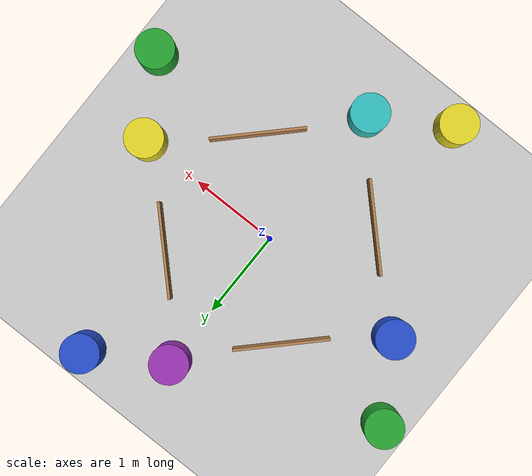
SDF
<sdf version="1.6">
 <world name="default">
  <light name="sun" type="directional">
   <pose>0 0 10 0 -0 0</pose>
   <diffuse>0.8 0.8 0.8 1</diffuse>
   <specular>0.2 0.2 0.2 1</specular>
   <attenuation>
    <range>1000</range>
    <constant>0.9</constant>
    <linear>0.01</linear>
    <quadratic>0.001</quadratic>
   </attenuation>
   <direction>-0.5 0.1 -0.9</direction>
  </light>
  <gravity>0 0 -9.8</gravity>
  <magnetic_field>6e-06 2.3e-05 -4.2e-05</magnetic_field>
  <atmosphere type="adiabatic"/>
  <physics name="default_physics" default="0" type="ode">
   <max_step_size>0.001</max_step_size>
   <real_time_factor>1</real_time_factor>
   <real_time_update_rate>1000</real_time_update_rate>
  </physics>
  <scene><ambient>0.4 0.4 0.4 1</ambient><background>0.7 0.7 0.7 1</background><shadows>1</shadows></scene>
  <spherical_coordinates>
   <surface_model>EARTH_WGS84</surface_model>
   <latitude_deg>0</latitude_deg>
   <longitude_deg>0</longitude_deg>
   <elevation>0</elevation>
   <heading_deg>0</heading_deg>
  </spherical_coordinates>
  <include><uri>model://task1</uri></include>
 </world>
</sdf>

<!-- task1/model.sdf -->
<sdf version="1.4">
<model name="task1">
  <static>true</static>
    <link name="floor">
      <collision name="collision">
        <geometry>
          <plane>
            <normal>0 0 1</normal>
            <size>5.0 5.0</size>
          </plane>
        </geometry>
        <surface>
          <friction>
            <ode>
              <mu>100</mu>
              <mu2>50</mu2>
            </ode>
          </friction>
        </surface>
      </collision>
      <visual name="visual">
        <cast_shadows>false</cast_shadows>
        <geometry>
          <plane>
            <normal>0 0 1</normal>
            <size>5.0 5.0</size>
          </plane>
        </geometry>
        <material>
          <script>
            <uri>model://task1/materials/scripts</uri>
            <uri>model://task1/materials/textures</uri>
            <name>task1Floor/Image</name>
          </script>
        </material>
      </visual>
    </link>
    <link name='BLU1'>
      <pose frame=''>-1.68708 0 0.2 0 0 0</pose>
      <collision name='coll'>
        <geometry>
          <cylinder>
            <radius>0.215</radius>
            <length>0.4</length>
          </cylinder>
        </geometry>
        <max_contacts>10</max_contacts>
        <surface>
          <bounce/>
          <friction>
            <ode/>
          </friction>
          <contact>
            <ode/>
          </contact>
        </surface>
      </collision>
      <visual name='vis'>
        <geometry>
          <cylinder>
            <radius>0.215</radius>
            <length>0.4</length>
          </cylinder>
        </geometry>
        <material>
          <script>
            <uri>file://media/materials/scripts/gazebo.material</uri>
            <name>Gazebo/Blue</name>
          </script>
        </material>
      </visual>
    </link>
    <link name='YEL1'>
      <pose frame=''>1.68708 0 0.2 0 0 0</pose>
      <collision name='coll'>
        <geometry>
          <cylinder>
            <radius>0.215</radius>
            <length>0.4</length>
          </cylinder>
        </geometry>
        <max_contacts>10</max_contacts>
        <surface>
          <bounce/>
          <friction>
            <ode/>
          </friction>
          <contact>
            <ode/>
          </contact>
        </surface>
      </collision>
      <visual name='vis'>
        <geometry>
          <cylinder>
            <radius>0.215</radius>
            <length>0.4</length>
          </cylinder>
        </geometry>
        <material>
          <script>
            <uri>file://media/materials/scripts/gazebo.material</uri>
            <name>Gazebo/Yellow</name>
          </script>
        </material>
      </visual>
    </link>
    <link name='GRN1'>
      <pose frame=''>-2.17971 0.8 0.2 0 0 0</pose>
      <collision name='coll'>
        <geometry>
          <cylinder>
            <radius>0.215</radius>
            <length>0.4</length>
          </cylinder>
        </geometry>
        <max_contacts>10</max_contacts>
        <surface>
          <bounce/>
          <friction>
            <ode/>
          </friction>
          <contact>
            <ode/>
          </contact>
        </surface>
      </collision>
      <visual name='vis'>
        <geometry>
          <cylinder>
            <radius>0.215</radius>
            <length>0.4</length>
          </cylinder>
        </geometry>
        <material>
          <script>
            <uri>file://media/materials/scripts/gazebo.material</uri>
            <name>Gazebo/Green</name>
          </script>
        </material>
      </visual>
    </link>
    <link name='PRP1'>
      <pose frame=''>0 1.68708 0.2 0 0 0</pose>
      <collision name='coll'>
        <geometry>
          <cylinder>
            <radius>0.215</radius>
            <length>0.4</length>
          </cylinder>
        </geometry>
        <max_contacts>10</max_contacts>
        <surface>
          <bounce/>
          <friction>
            <ode/>
          </friction>
          <contact>
            <ode/>
          </contact>
        </surface>
      </collision>
      <visual name='vis'>
        <geometry>
          <cylinder>
            <radius>0.215</radius>
            <length>0.4</length>
          </cylinder>
        </geometry>
        <material>
          <script>
            <uri>file://media/materials/scripts/gazebo.material</uri>
            <name>Gazebo/Purple</name>
          </script>
        </material>
      </visual>
    </link>
    <link name='TRQ1'>
      <pose frame=''>0 -1.68707 0.2 0 0 0</pose>
      <collision name='coll'>
        <geometry>
          <cylinder>
            <radius>0.215</radius>
            <length>0.4</length>
          </cylinder>
        </geometry>
        <max_contacts>10</max_contacts>
        <surface>
          <bounce/>
          <friction>
            <ode/>
          </friction>
          <contact>
            <ode/>
          </contact>
        </surface>
      </collision>
      <visual name='vis'>
        <geometry>
          <cylinder>
            <radius>0.215</radius>
            <length>0.4</length>
          </cylinder>
        </geometry>
        <material>
          <script>
            <uri>file://media/materials/scripts/gazebo.material</uri>
            <name>Gazebo/Turquoise</name>
          </script>
        </material>
      </visual>
    </link>
    <link name='GRN2'>
      <pose frame=''>2.17971 -0.8 0.2 0 0 0</pose>
      <collision name='coll'>
        <geometry>
          <cylinder>
            <radius>0.215</radius>
            <length>0.4</length>
          </cylinder>
        </geometry>
        <max_contacts>10</max_contacts>
        <surface>
          <bounce/>
          <friction>
            <ode/>
          </friction>
          <contact>
            <ode/>
          </contact>
        </surface>
      </collision>
      <visual name='vis'>
        <geometry>
          <cylinder>
            <radius>0.215</radius>
            <length>0.4</length>
          </cylinder>
        </geometry>
        <material>
          <script>
            <uri>file://media/materials/scripts/gazebo.material</uri>
            <name>Gazebo/Green</name>
          </script>
        </material>
      </visual>
    </link>
    <link name='YEL2'>
      <pose frame=''>-0.8 -2.17971 0.2 0 0 0</pose>
      <collision name='coll'>
        <geometry>
          <cylinder>
            <radius>0.215</radius>
            <length>0.4</length>
          </cylinder>
        </geometry>
        <max_contacts>10</max_contacts>
        <surface>
          <bounce/>
          <friction>
            <ode/>
          </friction>
          <contact>
            <ode/>
          </contact>
        </surface>
      </collision>
      <visual name='vis'>
        <geometry>
          <cylinder>
            <radius>0.215</radius>
            <length>0.4</length>
          </cylinder>
        </geometry>
        <material>
          <script>
            <uri>file://media/materials/scripts/gazebo.material</uri>
            <name>Gazebo/Yellow</name>
          </script>
        </material>
      </visual>
    </link>
    <link name='BLU2'>
      <pose frame=''>0.8 2.17971 0.2 0 0 0</pose>
      <collision name='coll'>
        <geometry>
          <cylinder>
            <radius>0.215</radius>
            <length>0.4</length>
          </cylinder>
        </geometry>
        <max_contacts>10</max_contacts>
        <surface>
          <bounce/>
          <friction>
            <ode/>
          </friction>
          <contact>
            <ode/>
          </contact>
        </surface>
      </collision>
      <visual name='vis'>
        <geometry>
          <cylinder>
            <radius>0.215</radius>
            <length>0.4</length>
          </cylinder>
        </geometry>
        <material>
          <script>
            <uri>file://media/materials/scripts/gazebo.material</uri>
            <name>Gazebo/Blue</name>
          </script>
        </material>
      </visual>
    </link>
    <link name='wall_1'>
      <pose frame=''>-0.8 0.8 0.125 0 0 -0.785</pose>
      <collision name='coll'>
        <geometry>
          <box>
            <size>0.03 1.05 0.25</size>
          </box>
        </geometry>
      </collision>
      <visual name='vis'>
        <geometry>
          <box>
            <size>0.03 1.05 0.25</size>
          </box>
        </geometry>
        <material>
          <script>
            <uri>file://media/materials/scripts/gazebo.material</uri>
            <name>Gazebo/Wood</name>
          </script>
        </material>
      </visual>
    </link>
    <link name='wall_2'>
      <pose frame=''>0.8 0.8 0.125 0 0 -0.785</pose>
      <collision name='coll'>
        <geometry>
          <box>
            <size>1.05 0.03 0.25</size>
          </box>
        </geometry>
      </collision>
      <visual name='vis'>
        <geometry>
          <box>
            <size>1.05 0.03 0.25</size>
          </box>
        </geometry>
        <material>
          <script>
            <uri>file://media/materials/scripts/gazebo.material</uri>
            <name>Gazebo/Wood</name>
          </script>
        </material>
      </visual>
    </link>
    <link name='wall_3'>
      <pose frame=''>0.8 -0.8 0.125 0 0 -0.785</pose>
      <collision name='coll'>
        <geometry>
          <box>
            <size>0.03 1.05 0.25</size>
          </box>
        </geometry>
      </collision>
      <visual name='vis'>
        <geometry>
          <box>
            <size>0.03 1.05 0.25</size>
          </box>
        </geometry>
        <material>
          <script>
            <uri>file://media/materials/scripts/gazebo.material</uri>
            <name>Gazebo/Wood</name>
          </script>
        </material>
      </visual>
    </link>
    <link name='wall_4'>
      <pose frame=''>-0.8 -0.8 0.125 0 0 -0.785</pose>
      <collision name='coll'>
        <geometry>
          <box>
            <size>1.05 0.03 0.25</size>
          </box>
        </geometry>
      </collision>
      <visual name='vis'>
        <geometry>
          <box>
            <size>1.05 0.03 0.25</size>
          </box>
        </geometry>
        <material>
          <script>
            <uri>file://media/materials/scripts/gazebo.material</uri>
            <name>Gazebo/Wood</name>
          </script>
        </material>
      </visual>
    </link>
  </model>
</sdf>
